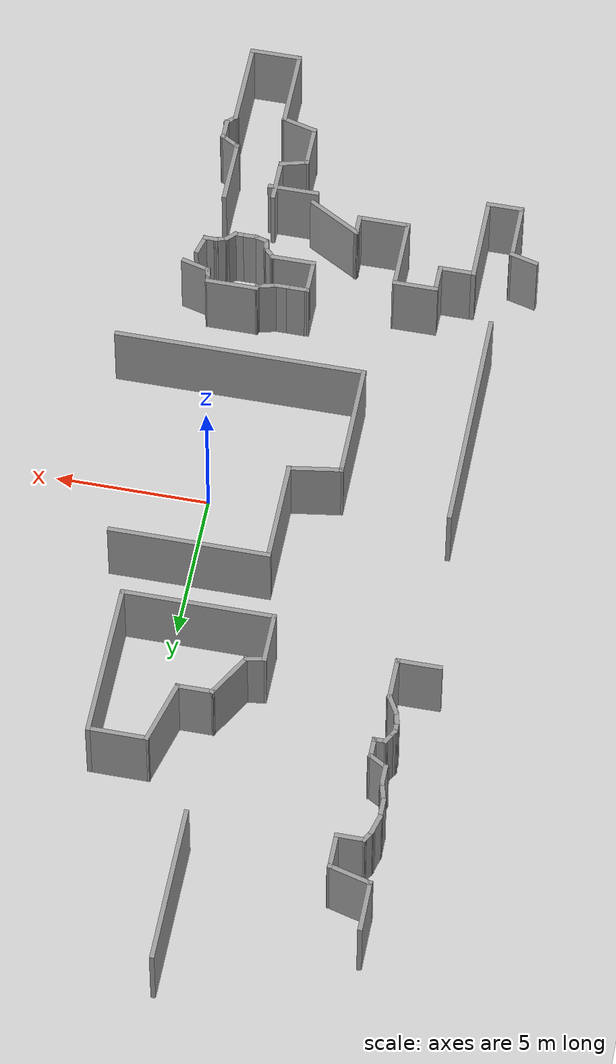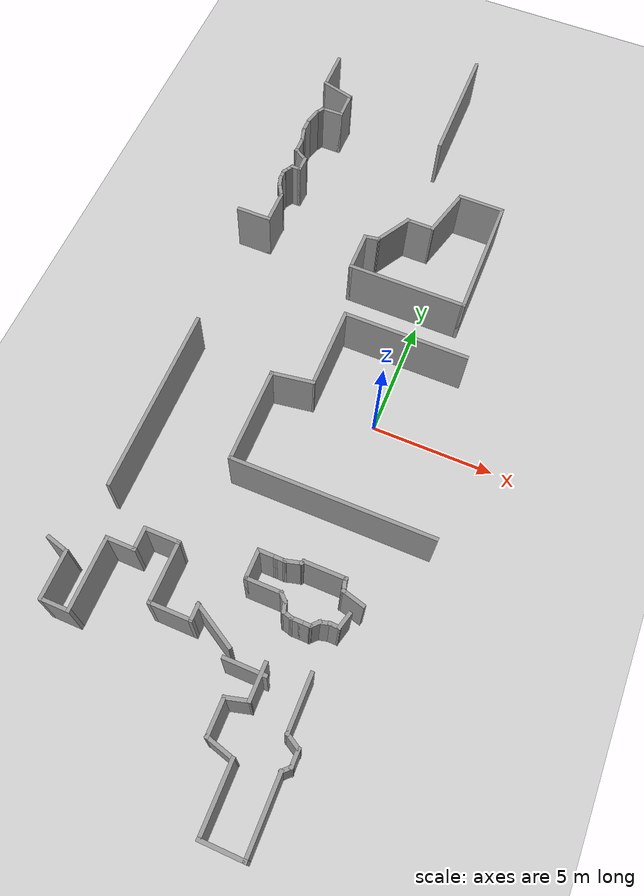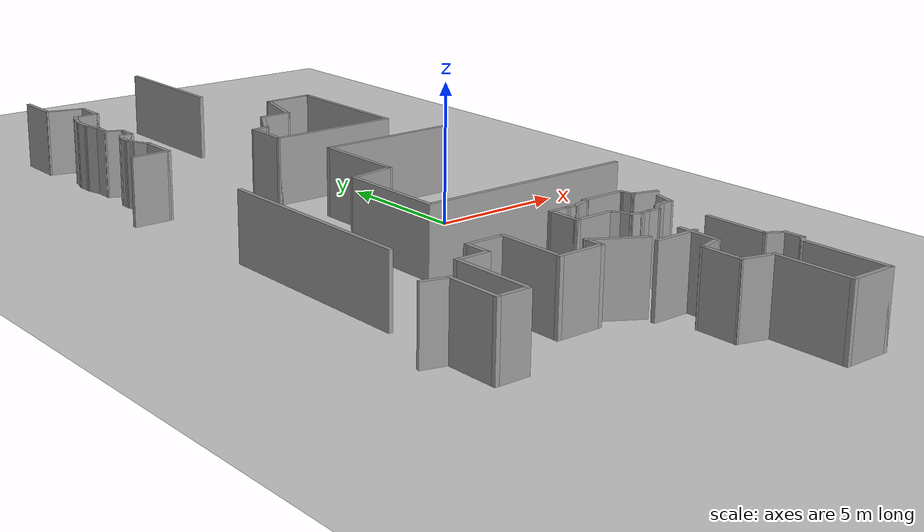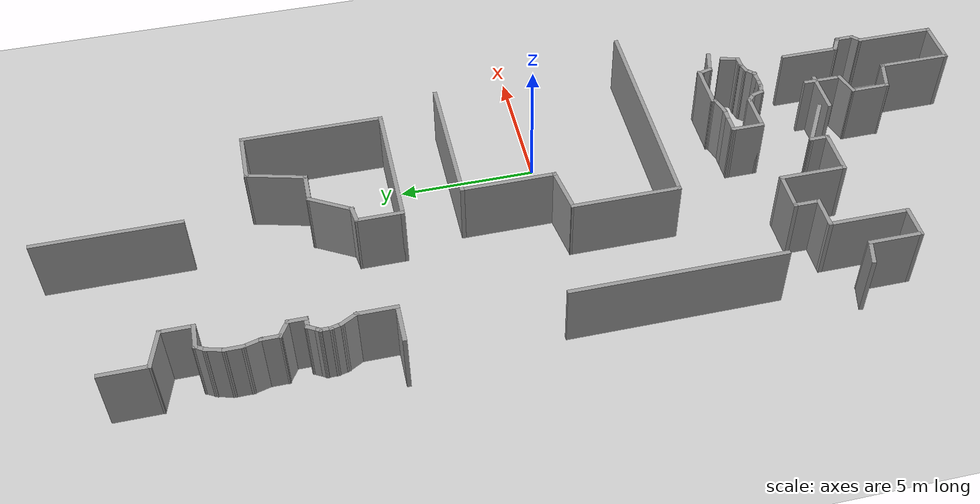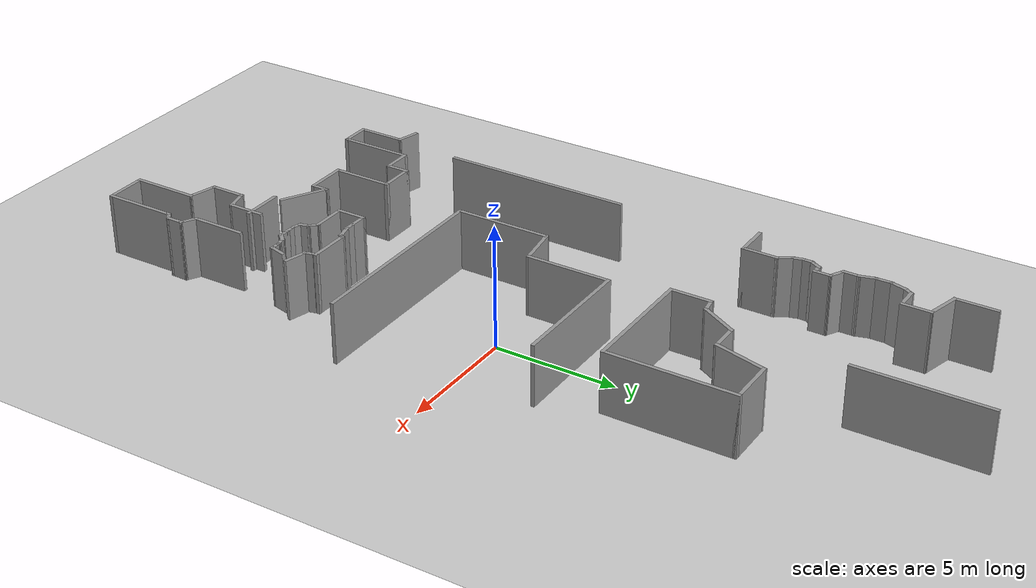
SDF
<sdf version="1.7">
 <world name="default">
  <model name="ground_plane">
   <static>1</static>
   <link name="link">
    <collision name="collision">
     <geometry><plane><normal>0 0 1</normal><size>100 100</size></plane></geometry>
     <surface>
      <contact><collide_bitmask>65535</collide_bitmask></contact>
      <friction><ode><mu>100</mu><mu2>50</mu2></ode></friction>
     </surface>
    </collision>
    <visual name="visual">
     <cast_shadows>0</cast_shadows>
     <geometry><plane><normal>0 0 1</normal><size>100 100</size></plane></geometry>
     <material>
      <script><uri>file://media/materials/scripts/gazebo.material</uri><name>Gazebo/Grey</name></script>
     </material>
    </visual>
   </link>
  </model>
  <model name="latest_world">
   <pose>-1.4911 -0.096187 0 0 -0 0</pose>
   <link name="Wall_1">
    <collision name="Wall_1_Collision">
     <geometry><box><size>5.25 0.15 2.5</size></box></geometry>
     <pose>0 0 1.25 0 -0 0</pose>
    </collision>
    <visual name="Wall_1_Visual">
     <pose>0 0 1.25 0 -0 0</pose>
     <geometry><box><size>5.25 0.15 2.5</size></box></geometry>
     <material>
      <script><uri>file://media/materials/scripts/gazebo.material</uri><name>Gazebo/Grey</name></script>
      <ambient>1 1 1 1</ambient>
     </material>
     <meta><layer>0</layer></meta>
    </visual>
    <pose>-0.444891 15.4657 0 0 -0 -1.5708</pose>
   </link>
   <link name="Wall_153">
    <collision name="Wall_153_Collision">
     <geometry><box><size>7.75 0.15 2.5</size></box></geometry>
     <pose>0 0 1.25 0 -0 0</pose>
    </collision>
    <visual name="Wall_153_Visual">
     <pose>0 0 1.25 0 -0 0</pose>
     <geometry><box><size>7.75 0.15 2.5</size></box></geometry>
     <material>
      <script><uri>file://media/materials/scripts/gazebo.material</uri><name>Gazebo/Grey</name></script>
      <ambient>1 1 1 1</ambient>
     </material>
     <meta><layer>0</layer></meta>
    </visual>
    <pose>-6.4377 -3.07626 0 0 -0 1.5708</pose>
   </link>
   <link name="Wall_257">
    <collision name="Wall_257_Collision">
     <geometry><box><size>1.5 0.15 2.5</size></box></geometry>
     <pose>0 0 1.25 0 -0 0</pose>
    </collision>
    <visual name="Wall_257_Visual">
     <pose>0 0 1.25 0 -0 0</pose>
     <geometry><box><size>1.5 0.15 2.5</size></box></geometry>
     <material>
      <script><uri>file://media/materials/scripts/gazebo.material</uri><name>Gazebo/Grey</name></script>
      <ambient>1 1 1 1</ambient>
     </material>
     <meta><layer>0</layer></meta>
    </visual>
    <pose>-6.46646 6.33002 0 0 -0 0</pose>
   </link>
   <link name="Wall_258">
    <collision name="Wall_258_Collision">
     <geometry><box><size>1.5 0.15 2.5</size></box></geometry>
     <pose>0 0 1.25 0 -0 0</pose>
    </collision>
    <visual name="Wall_258_Visual">
     <pose>0 0 1.25 0 -0 0</pose>
     <geometry><box><size>1.5 0.15 2.5</size></box></geometry>
     <material>
      <script><uri>file://media/materials/scripts/gazebo.material</uri><name>Gazebo/Grey</name></script>
      <ambient>1 1 1 1</ambient>
     </material>
     <meta><layer>0</layer></meta>
    </visual>
    <pose>-5.79146 7.00502 0 0 -0 1.5708</pose>
   </link>
   <link name="Wall_259">
    <collision name="Wall_259_Collision">
     <geometry><box><size>0.75 0.15 2.5</size></box></geometry>
     <pose>0 0 1.25 0 -0 0</pose>
    </collision>
    <visual name="Wall_259_Visual">
     <pose>0 0 1.25 0 -0 0</pose>
     <geometry><box><size>0.75 0.15 2.5</size></box></geometry>
     <material>
      <script><uri>file://media/materials/scripts/gazebo.material</uri><name>Gazebo/Grey</name></script>
      <ambient>1 1 1 1</ambient>
     </material>
     <meta><layer>0</layer></meta>
    </visual>
    <pose>-5.94146 7.93982 0 0 -0 2.0944</pose>
   </link>
   <link name="Wall_260">
    <collision name="Wall_260_Collision">
     <geometry><box><size>0.5 0.15 2.5</size></box></geometry>
     <pose>0 0 1.25 0 -0 0</pose>
    </collision>
    <visual name="Wall_260_Visual">
     <pose>0 0 1.25 0 -0 0</pose>
     <geometry><box><size>0.5 0.15 2.5</size></box></geometry>
     <material>
      <script><uri>file://media/materials/scripts/gazebo.material</uri><name>Gazebo/Grey</name></script>
      <ambient>1 1 1 1</ambient>
     </material>
     <meta><layer>0</layer></meta>
    </visual>
    <pose>-6.13675 8.36867 0 0 -0 1.8326</pose>
   </link>
   <link name="Wall_261">
    <collision name="Wall_261_Collision">
     <geometry><box><size>0.5 0.15 2.5</size></box></geometry>
     <pose>0 0 1.25 0 -0 0</pose>
    </collision>
    <visual name="Wall_261_Visual">
     <pose>0 0 1.25 0 -0 0</pose>
     <geometry><box><size>0.5 0.15 2.5</size></box></geometry>
     <material>
      <script><uri>file://media/materials/scripts/gazebo.material</uri><name>Gazebo/Grey</name></script>
      <ambient>1 1 1 1</ambient>
     </material>
     <meta><layer>0</layer></meta>
    </visual>
    <pose>-6.18205 8.71271 0 0 -0 1.5708</pose>
   </link>
   <link name="Wall_262">
    <collision name="Wall_262_Collision">
     <geometry><box><size>0.25 0.15 2.5</size></box></geometry>
     <pose>0 0 1.25 0 -0 0</pose>
    </collision>
    <visual name="Wall_262_Visual">
     <pose>0 0 1.25 0 -0 0</pose>
     <geometry><box><size>0.25 0.15 2.5</size></box></geometry>
     <material>
      <script><uri>file://media/materials/scripts/gazebo.material</uri><name>Gazebo/Grey</name></script>
      <ambient>1 1 1 1</ambient>
     </material>
     <meta><layer>0</layer></meta>
    </visual>
    <pose>-6.15705 8.93101 0 0 -0 1.0472</pose>
   </link>
   <link name="Wall_263">
    <collision name="Wall_263_Collision">
     <geometry><box><size>0.5 0.15 2.5</size></box></geometry>
     <pose>0 0 1.25 0 -0 0</pose>
    </collision>
    <visual name="Wall_263_Visual">
     <pose>0 0 1.25 0 -0 0</pose>
     <geometry><box><size>0.5 0.15 2.5</size></box></geometry>
     <material>
      <script><uri>file://media/materials/scripts/gazebo.material</uri><name>Gazebo/Grey</name></script>
      <ambient>1 1 1 1</ambient>
     </material>
     <meta><layer>0</layer></meta>
    </visual>
    <pose>-6.04455 9.12586 0 0 -0 1.0472</pose>
   </link>
   <link name="Wall_264">
    <collision name="Wall_264_Collision">
     <geometry><box><size>0.5 0.15 2.5</size></box></geometry>
     <pose>0 0 1.25 0 -0 0</pose>
    </collision>
    <visual name="Wall_264_Visual">
     <pose>0 0 1.25 0 -0 0</pose>
     <geometry><box><size>0.5 0.15 2.5</size></box></geometry>
     <material>
      <script><uri>file://media/materials/scripts/gazebo.material</uri><name>Gazebo/Grey</name></script>
      <ambient>1 1 1 1</ambient>
     </material>
     <meta><layer>0</layer></meta>
    </visual>
    <pose>-5.78205 9.27742 0 0 -0 0</pose>
   </link>
   <link name="Wall_265">
    <collision name="Wall_265_Collision">
     <geometry><box><size>0.75 0.15 2.5</size></box></geometry>
     <pose>0 0 1.25 0 -0 0</pose>
    </collision>
    <visual name="Wall_265_Visual">
     <pose>0 0 1.25 0 -0 0</pose>
     <geometry><box><size>0.75 0.15 2.5</size></box></geometry>
     <material>
      <script><uri>file://media/materials/scripts/gazebo.material</uri><name>Gazebo/Grey</name></script>
      <ambient>1 1 1 1</ambient>
     </material>
     <meta><layer>0</layer></meta>
    </visual>
    <pose>-5.60705 9.57742 0 0 -0 1.5708</pose>
   </link>
   <link name="Wall_266">
    <collision name="Wall_266_Collision">
     <geometry><box><size>0.75 0.15 2.5</size></box></geometry>
     <pose>0 0 1.25 0 -0 0</pose>
    </collision>
    <visual name="Wall_266_Visual">
     <pose>0 0 1.25 0 -0 0</pose>
     <geometry><box><size>0.75 0.15 2.5</size></box></geometry>
     <material>
      <script><uri>file://media/materials/scripts/gazebo.material</uri><name>Gazebo/Grey</name></script>
      <ambient>1 1 1 1</ambient>
     </material>
     <meta><layer>0</layer></meta>
    </visual>
    <pose>-5.86685 10.0274 0 0 -0 2.61799</pose>
   </link>
   <link name="Wall_267">
    <collision name="Wall_267_Collision">
     <geometry><box><size>0.75 0.15 2.5</size></box></geometry>
     <pose>0 0 1.25 0 -0 0</pose>
    </collision>
    <visual name="Wall_267_Visual">
     <pose>0 0 1.25 0 -0 0</pose>
     <geometry><box><size>0.75 0.15 2.5</size></box></geometry>
     <material>
      <script><uri>file://media/materials/scripts/gazebo.material</uri><name>Gazebo/Grey</name></script>
      <ambient>1 1 1 1</ambient>
     </material>
     <meta><layer>0</layer></meta>
    </visual>
    <pose>-6.12666 10.4774 0 0 -0 1.5708</pose>
   </link>
   <link name="Wall_268">
    <collision name="Wall_268_Collision">
     <geometry><box><size>0.75 0.15 2.5</size></box></geometry>
     <pose>0 0 1.25 0 -0 0</pose>
    </collision>
    <visual name="Wall_268_Visual">
     <pose>0 0 1.25 0 -0 0</pose>
     <geometry><box><size>0.75 0.15 2.5</size></box></geometry>
     <material>
      <script><uri>file://media/materials/scripts/gazebo.material</uri><name>Gazebo/Grey</name></script>
      <ambient>1 1 1 1</ambient>
     </material>
     <meta><layer>0</layer></meta>
    </visual>
    <pose>-6.20431 11.0672 0 0 -0 1.8326</pose>
   </link>
   <link name="Wall_269">
    <collision name="Wall_269_Collision">
     <geometry><box><size>0.75 0.15 2.5</size></box></geometry>
     <pose>0 0 1.25 0 -0 0</pose>
    </collision>
    <visual name="Wall_269_Visual">
     <pose>0 0 1.25 0 -0 0</pose>
     <geometry><box><size>0.75 0.15 2.5</size></box></geometry>
     <material>
      <script><uri>file://media/materials/scripts/gazebo.material</uri><name>Gazebo/Grey</name></script>
      <ambient>1 1 1 1</ambient>
     </material>
     <meta><layer>0</layer></meta>
    </visual>
    <pose>-6.28195 11.657 0 0 -0 1.5708</pose>
   </link>
   <link name="Wall_270">
    <collision name="Wall_270_Collision">
     <geometry><box><size>0.75 0.15 2.5</size></box></geometry>
     <pose>0 0 1.25 0 -0 0</pose>
    </collision>
    <visual name="Wall_270_Visual">
     <pose>0 0 1.25 0 -0 0</pose>
     <geometry><box><size>0.75 0.15 2.5</size></box></geometry>
     <material>
      <script><uri>file://media/materials/scripts/gazebo.material</uri><name>Gazebo/Grey</name></script>
      <ambient>1 1 1 1</ambient>
     </material>
     <meta><layer>0</layer></meta>
    </visual>
    <pose>-6.20431 12.2468 0 0 -0 1.309</pose>
   </link>
   <link name="Wall_271">
    <collision name="Wall_271_Collision">
     <geometry><box><size>0.5 0.15 2.5</size></box></geometry>
     <pose>0 0 1.25 0 -0 0</pose>
    </collision>
    <visual name="Wall_271_Visual">
     <pose>0 0 1.25 0 -0 0</pose>
     <geometry><box><size>0.5 0.15 2.5</size></box></geometry>
     <material>
      <script><uri>file://media/materials/scripts/gazebo.material</uri><name>Gazebo/Grey</name></script>
      <ambient>1 1 1 1</ambient>
     </material>
     <meta><layer>0</layer></meta>
    </visual>
    <pose>-6.03916 12.6881 0 0 -0 1.0472</pose>
   </link>
   <link name="Wall_272">
    <collision name="Wall_272_Collision">
     <geometry><box><size>1 0.15 2.5</size></box></geometry>
     <pose>0 0 1.25 0 -0 0</pose>
    </collision>
    <visual name="Wall_272_Visual">
     <pose>0 0 1.25 0 -0 0</pose>
     <geometry><box><size>1 0.15 2.5</size></box></geometry>
     <material>
      <script><uri>file://media/materials/scripts/gazebo.material</uri><name>Gazebo/Grey</name></script>
      <ambient>1 1 1 1</ambient>
     </material>
     <meta><layer>0</layer></meta>
    </visual>
    <pose>-5.52666 12.8396 0 0 -0 0</pose>
   </link>
   <link name="Wall_273">
    <collision name="Wall_273_Collision">
     <geometry><box><size>1.25 0.15 2.5</size></box></geometry>
     <pose>0 0 1.25 0 -0 0</pose>
    </collision>
    <visual name="Wall_273_Visual">
     <pose>0 0 1.25 0 -0 0</pose>
     <geometry><box><size>1.25 0.15 2.5</size></box></geometry>
     <material>
      <script><uri>file://media/materials/scripts/gazebo.material</uri><name>Gazebo/Grey</name></script>
      <ambient>1 1 1 1</ambient>
     </material>
     <meta><layer>0</layer></meta>
    </visual>
    <pose>-5.10166 13.3896 0 0 -0 1.5708</pose>
   </link>
   <link name="Wall_274">
    <collision name="Wall_274_Collision">
     <geometry><box><size>1.5 0.15 2.5</size></box></geometry>
     <pose>0 0 1.25 0 -0 0</pose>
    </collision>
    <visual name="Wall_274_Visual">
     <pose>0 0 1.25 0 -0 0</pose>
     <geometry><box><size>1.5 0.15 2.5</size></box></geometry>
     <material>
      <script><uri>file://media/materials/scripts/gazebo.material</uri><name>Gazebo/Grey</name></script>
      <ambient>1 1 1 1</ambient>
     </material>
     <meta><layer>0</layer></meta>
    </visual>
    <pose>-5.75366 14.1143 0 0 -0 2.87979</pose>
   </link>
   <link name="Wall_275">
    <collision name="Wall_275_Collision">
     <geometry><box><size>1.75 0.15 2.5</size></box></geometry>
     <pose>0 0 1.25 0 -0 0</pose>
    </collision>
    <visual name="Wall_275_Visual">
     <pose>0 0 1.25 0 -0 0</pose>
     <geometry><box><size>1.75 0.15 2.5</size></box></geometry>
     <material>
      <script><uri>file://media/materials/scripts/gazebo.material</uri><name>Gazebo/Grey</name></script>
      <ambient>1 1 1 1</ambient>
     </material>
     <meta><layer>0</layer></meta>
    </visual>
    <pose>-6.40566 15.089 0 0 -0 1.5708</pose>
   </link>
   <link name="Wall_279">
    <collision name="Wall_279_Collision">
     <geometry><box><size>1.25 0.15 2.5</size></box></geometry>
     <pose>0 0 1.25 0 -0 0</pose>
    </collision>
    <visual name="Wall_279_Visual">
     <pose>0 0 1.25 0 -0 0</pose>
     <geometry><box><size>1.25 0.15 2.5</size></box></geometry>
     <material>
      <script><uri>file://media/materials/scripts/gazebo.material</uri><name>Gazebo/Grey</name></script>
      <ambient>1 1 1 1</ambient>
     </material>
     <meta><layer>0</layer></meta>
    </visual>
    <pose>-0.355137 -7.59426 0 0 -0 -1.5708</pose>
   </link>
   <link name="Wall_280">
    <collision name="Wall_280_Collision">
     <geometry><box><size>1.5 0.15 2.5</size></box></geometry>
     <pose>0 0 1.25 0 -0 0</pose>
    </collision>
    <visual name="Wall_280_Visual">
     <pose>0 0 1.25 0 -0 0</pose>
     <geometry><box><size>1.5 0.15 2.5</size></box></geometry>
     <material>
      <script><uri>file://media/materials/scripts/gazebo.material</uri><name>Gazebo/Grey</name></script>
      <ambient>1 1 1 1</ambient>
     </material>
     <meta><layer>0</layer></meta>
    </visual>
    <pose>0.319863 -8.14426 0 0 -0 0</pose>
   </link>
   <link name="Wall_281">
    <collision name="Wall_281_Collision">
     <geometry><box><size>0.5 0.15 2.5</size></box></geometry>
     <pose>0 0 1.25 0 -0 0</pose>
    </collision>
    <visual name="Wall_281_Visual">
     <pose>0 0 1.25 0 -0 0</pose>
     <geometry><box><size>0.5 0.15 2.5</size></box></geometry>
     <material>
      <script><uri>file://media/materials/scripts/gazebo.material</uri><name>Gazebo/Grey</name></script>
      <ambient>1 1 1 1</ambient>
     </material>
     <meta><layer>0</layer></meta>
    </visual>
    <pose>1.11861 -8.26801 0 0 -0 -0.785398</pose>
   </link>
   <link name="Wall_282">
    <collision name="Wall_282_Collision">
     <geometry><box><size>0.5 0.15 2.5</size></box></geometry>
     <pose>0 0 1.25 0 -0 0</pose>
    </collision>
    <visual name="Wall_282_Visual">
     <pose>0 0 1.25 0 -0 0</pose>
     <geometry><box><size>0.5 0.15 2.5</size></box></geometry>
     <material>
      <script><uri>file://media/materials/scripts/gazebo.material</uri><name>Gazebo/Grey</name></script>
      <ambient>1 1 1 1</ambient>
     </material>
     <meta><layer>0</layer></meta>
    </visual>
    <pose>1.28764 -8.56079 0 0 -0 -1.309</pose>
   </link>
   <link name="Wall_283">
    <collision name="Wall_283_Collision">
     <geometry><box><size>0.5 0.15 2.5</size></box></geometry>
     <pose>0 0 1.25 0 -0 0</pose>
    </collision>
    <visual name="Wall_283_Visual">
     <pose>0 0 1.25 0 -0 0</pose>
     <geometry><box><size>0.5 0.15 2.5</size></box></geometry>
     <material>
      <script><uri>file://media/materials/scripts/gazebo.material</uri><name>Gazebo/Grey</name></script>
      <ambient>1 1 1 1</ambient>
     </material>
     <meta><layer>0</layer></meta>
    </visual>
    <pose>1.50197 -8.77512 0 0 -0 -0.261799</pose>
   </link>
   <link name="Wall_284">
    <collision name="Wall_284_Collision">
     <geometry><box><size>0.5 0.15 2.5</size></box></geometry>
     <pose>0 0 1.25 0 -0 0</pose>
    </collision>
    <visual name="Wall_284_Visual">
     <pose>0 0 1.25 0 -0 0</pose>
     <geometry><box><size>0.5 0.15 2.5</size></box></geometry>
     <material>
      <script><uri>file://media/materials/scripts/gazebo.material</uri><name>Gazebo/Grey</name></script>
      <ambient>1 1 1 1</ambient>
     </material>
     <meta><layer>0</layer></meta>
    </visual>
    <pose>1.84601 -8.82041 0 0 -0 0</pose>
   </link>
   <link name="Wall_285">
    <collision name="Wall_285_Collision">
     <geometry><box><size>0.5 0.15 2.5</size></box></geometry>
     <pose>0 0 1.25 0 -0 0</pose>
    </collision>
    <visual name="Wall_285_Visual">
     <pose>0 0 1.25 0 -0 0</pose>
     <geometry><box><size>0.5 0.15 2.5</size></box></geometry>
     <material>
      <script><uri>file://media/materials/scripts/gazebo.material</uri><name>Gazebo/Grey</name></script>
      <ambient>1 1 1 1</ambient>
     </material>
     <meta><layer>0</layer></meta>
    </visual>
    <pose>2.19601 -8.82041 0 0 -0 0</pose>
   </link>
   <link name="Wall_286">
    <collision name="Wall_286_Collision">
     <geometry><box><size>0.5 0.15 2.5</size></box></geometry>
     <pose>0 0 1.25 0 -0 0</pose>
    </collision>
    <visual name="Wall_286_Visual">
     <pose>0 0 1.25 0 -0 0</pose>
     <geometry><box><size>0.5 0.15 2.5</size></box></geometry>
     <material>
      <script><uri>file://media/materials/scripts/gazebo.material</uri><name>Gazebo/Grey</name></script>
      <ambient>1 1 1 1</ambient>
     </material>
     <meta><layer>0</layer></meta>
    </visual>
    <pose>2.49476 -8.69667 0 0 -0 0.785398</pose>
   </link>
   <link name="Wall_287">
    <collision name="Wall_287_Collision">
     <geometry><box><size>0.5 0.15 2.5</size></box></geometry>
     <pose>0 0 1.25 0 -0 0</pose>
    </collision>
    <visual name="Wall_287_Visual">
     <pose>0 0 1.25 0 -0 0</pose>
     <geometry><box><size>0.5 0.15 2.5</size></box></geometry>
     <material>
      <script><uri>file://media/materials/scripts/gazebo.material</uri><name>Gazebo/Grey</name></script>
      <ambient>1 1 1 1</ambient>
     </material>
     <meta><layer>0</layer></meta>
    </visual>
    <pose>2.78754 -8.52763 0 0 -0 0.261799</pose>
   </link>
   <link name="Wall_288">
    <collision name="Wall_288_Collision">
     <geometry><box><size>0.5 0.15 2.5</size></box></geometry>
     <pose>0 0 1.25 0 -0 0</pose>
    </collision>
    <visual name="Wall_288_Visual">
     <pose>0 0 1.25 0 -0 0</pose>
     <geometry><box><size>0.5 0.15 2.5</size></box></geometry>
     <material>
      <script><uri>file://media/materials/scripts/gazebo.material</uri><name>Gazebo/Grey</name></script>
      <ambient>1 1 1 1</ambient>
     </material>
     <meta><layer>0</layer></meta>
    </visual>
    <pose>3.13157 -8.48234 0 0 -0 0</pose>
   </link>
   <link name="Wall_289">
    <collision name="Wall_289_Collision">
     <geometry><box><size>0.75 0.15 2.5</size></box></geometry>
     <pose>0 0 1.25 0 -0 0</pose>
    </collision>
    <visual name="Wall_289_Visual">
     <pose>0 0 1.25 0 -0 0</pose>
     <geometry><box><size>0.75 0.15 2.5</size></box></geometry>
     <material>
      <script><uri>file://media/materials/scripts/gazebo.material</uri><name>Gazebo/Grey</name></script>
      <ambient>1 1 1 1</ambient>
     </material>
     <meta><layer>0</layer></meta>
    </visual>
    <pose>3.38422 -8.19256 0 0 -0 1.309</pose>
   </link>
   <link name="Wall_292">
    <collision name="Wall_292_Collision">
     <geometry><box><size>1 0.15 2.5</size></box></geometry>
     <pose>0 0 1.25 0 -0 0</pose>
    </collision>
    <visual name="Wall_292_Visual">
     <pose>0 0 1.25 0 -0 0</pose>
     <geometry><box><size>1 0.15 2.5</size></box></geometry>
     <material>
      <script><uri>file://media/materials/scripts/gazebo.material</uri><name>Gazebo/Grey</name></script>
      <ambient>1 1 1 1</ambient>
     </material>
     <meta><layer>0</layer></meta>
    </visual>
    <pose>3.38942 -7.3522 0 0 -0 2.87979</pose>
   </link>
   <link name="Wall_293">
    <collision name="Wall_293_Collision">
     <geometry><box><size>0.5 0.15 2.5</size></box></geometry>
     <pose>0 0 1.25 0 -0 0</pose>
    </collision>
    <visual name="Wall_293_Visual">
     <pose>0 0 1.25 0 -0 0</pose>
     <geometry><box><size>0.5 0.15 2.5</size></box></geometry>
     <material>
      <script><uri>file://media/materials/scripts/gazebo.material</uri><name>Gazebo/Grey</name></script>
      <ambient>1 1 1 1</ambient>
     </material>
     <meta><layer>0</layer></meta>
    </visual>
    <pose>2.93361 -7.07316 0 0 -0 1.8326</pose>
   </link>
   <link name="Wall_294">
    <collision name="Wall_294_Collision">
     <geometry><box><size>0.25 0.15 2.5</size></box></geometry>
     <pose>0 0 1.25 0 -0 0</pose>
    </collision>
    <visual name="Wall_294_Visual">
     <pose>0 0 1.25 0 -0 0</pose>
     <geometry><box><size>0.25 0.15 2.5</size></box></geometry>
     <material>
      <script><uri>file://media/materials/scripts/gazebo.material</uri><name>Gazebo/Grey</name></script>
      <ambient>1 1 1 1</ambient>
     </material>
     <meta><layer>0</layer></meta>
    </visual>
    <pose>2.88831 -6.85413 0 0 -0 1.5708</pose>
   </link>
   <link name="Wall_295">
    <collision name="Wall_295_Collision">
     <geometry><box><size>1.75 0.15 2.5</size></box></geometry>
     <pose>0 0 1.25 0 -0 0</pose>
    </collision>
    <visual name="Wall_295_Visual">
     <pose>0 0 1.25 0 -0 0</pose>
     <geometry><box><size>1.75 0.15 2.5</size></box></geometry>
     <material>
      <script><uri>file://media/materials/scripts/gazebo.material</uri><name>Gazebo/Grey</name></script>
      <ambient>1 1 1 1</ambient>
     </material>
     <meta><layer>0</layer></meta>
    </visual>
    <pose>2.08831 -6.80413 0 0 -0 3.14159</pose>
   </link>
   <link name="Wall_296">
    <collision name="Wall_296_Collision">
     <geometry><box><size>0.25 0.15 2.5</size></box></geometry>
     <pose>0 0 1.25 0 -0 0</pose>
    </collision>
    <visual name="Wall_296_Visual">
     <pose>0 0 1.25 0 -0 0</pose>
     <geometry><box><size>0.25 0.15 2.5</size></box></geometry>
     <material>
      <script><uri>file://media/materials/scripts/gazebo.material</uri><name>Gazebo/Grey</name></script>
      <ambient>1 1 1 1</ambient>
     </material>
     <meta><layer>0</layer></meta>
    </visual>
    <pose>1.26331 -6.84743 0 0 -0 -2.0944</pose>
   </link>
   <link name="Wall_297">
    <collision name="Wall_297_Collision">
     <geometry><box><size>0.75 0.15 2.5</size></box></geometry>
     <pose>0 0 1.25 0 -0 0</pose>
    </collision>
    <visual name="Wall_297_Visual">
     <pose>0 0 1.25 0 -0 0</pose>
     <geometry><box><size>0.75 0.15 2.5</size></box></geometry>
     <material>
      <script><uri>file://media/materials/scripts/gazebo.material</uri><name>Gazebo/Grey</name></script>
      <ambient>1 1 1 1</ambient>
     </material>
     <meta><layer>0</layer></meta>
    </visual>
    <pose>0.948537 -6.96837 0 0 -0 -2.87979</pose>
   </link>
   <link name="Wall_298">
    <collision name="Wall_298_Collision">
     <geometry><box><size>0.5 0.15 2.5</size></box></geometry>
     <pose>0 0 1.25 0 -0 0</pose>
    </collision>
    <visual name="Wall_298_Visual">
     <pose>0 0 1.25 0 -0 0</pose>
     <geometry><box><size>0.5 0.15 2.5</size></box></geometry>
     <material>
      <script><uri>file://media/materials/scripts/gazebo.material</uri><name>Gazebo/Grey</name></script>
      <ambient>1 1 1 1</ambient>
     </material>
     <meta><layer>0</layer></meta>
    </visual>
    <pose>0.483759 -7.04602 0 0 -0 3.14159</pose>
   </link>
   <link name="Wall_299">
    <collision name="Wall_299_Collision">
     <geometry><box><size>0.813898 0.15 2.5</size></box></geometry>
     <pose>0 0 1.25 0 -0 0</pose>
    </collision>
    <visual name="Wall_299_Visual">
     <pose>0 0 1.25 0 -0 0</pose>
     <geometry><box><size>0.813898 0.15 2.5</size></box></geometry>
     <material>
      <script><uri>file://media/materials/scripts/gazebo.material</uri><name>Gazebo/Grey</name></script>
      <ambient>1 1 1 1</ambient>
     </material>
     <meta><layer>0</layer></meta>
    </visual>
    <pose>-0.023189 -7.04514 0 0 -0 3.13895</pose>
   </link>
   <link name="Wall_301">
    <collision name="Wall_301_Collision">
     <geometry><box><size>4 0.15 2.5</size></box></geometry>
     <pose>0 0 1.25 0 -0 0</pose>
    </collision>
    <visual name="Wall_301_Visual">
     <pose>0 0 1.25 0 -0 0</pose>
     <geometry><box><size>4 0.15 2.5</size></box></geometry>
     <material>
      <script><uri>file://media/materials/scripts/gazebo.material</uri><name>Gazebo/Grey</name></script>
      <ambient>1 1 1 1</ambient>
     </material>
     <meta><layer>0</layer></meta>
    </visual>
    <pose>-2.75483 -2.27212 0 0 -0 -1.5708</pose>
   </link>
   <link name="Wall_302">
    <collision name="Wall_302_Collision">
     <geometry><box><size>8.25 0.15 2.5</size></box></geometry>
     <pose>0 0 1.25 0 -0 0</pose>
    </collision>
    <visual name="Wall_302_Visual">
     <pose>0 0 1.25 0 -0 0</pose>
     <geometry><box><size>8.25 0.15 2.5</size></box></geometry>
     <material>
      <script><uri>file://media/materials/scripts/gazebo.material</uri><name>Gazebo/Grey</name></script>
      <ambient>1 1 1 1</ambient>
     </material>
     <meta><layer>0</layer></meta>
    </visual>
    <pose>1.29517 -4.19712 0 0 -0 0</pose>
   </link>
   <link name="Wall_306">
    <collision name="Wall_306_Collision">
     <geometry><box><size>5.25 0.15 2.5</size></box></geometry>
     <pose>0 0 1.25 0 -0 0</pose>
    </collision>
    <visual name="Wall_306_Visual">
     <pose>0 0 1.25 0 -0 0</pose>
     <geometry><box><size>5.25 0.15 2.5</size></box></geometry>
     <material>
      <script><uri>file://media/materials/scripts/gazebo.material</uri><name>Gazebo/Grey</name></script>
      <ambient>1 1 1 1</ambient>
     </material>
     <meta><layer>0</layer></meta>
    </visual>
    <pose>1.44517 3.25288 0 0 -0 3.14159</pose>
   </link>
   <link name="Wall_307">
    <collision name="Wall_307_Collision">
     <geometry><box><size>3.5 0.15 2.5</size></box></geometry>
     <pose>0 0 1.25 0 -0 0</pose>
    </collision>
    <visual name="Wall_307_Visual">
     <pose>0 0 1.25 0 -0 0</pose>
     <geometry><box><size>3.5 0.15 2.5</size></box></geometry>
     <material>
      <script><uri>file://media/materials/scripts/gazebo.material</uri><name>Gazebo/Grey</name></script>
      <ambient>1 1 1 1</ambient>
     </material>
     <meta><layer>0</layer></meta>
    </visual>
    <pose>-1.10483 1.57788 0 0 -0 -1.5708</pose>
   </link>
   <link name="Wall_308">
    <collision name="Wall_308_Collision">
     <geometry><box><size>1.81883 0.15 2.5</size></box></geometry>
     <pose>0 0 1.25 0 -0 0</pose>
    </collision>
    <visual name="Wall_308_Visual">
     <pose>0 0 1.25 0 -0 0</pose>
     <geometry><box><size>1.81883 0.15 2.5</size></box></geometry>
     <material>
      <script><uri>file://media/materials/scripts/gazebo.material</uri><name>Gazebo/Grey</name></script>
      <ambient>1 1 1 1</ambient>
     </material>
     <meta><layer>0</layer></meta>
    </visual>
    <pose>-1.92983 -0.222116 0 0 -0 -2.99122</pose>
   </link>
   <link name="Wall_310">
    <collision name="Wall_310_Collision">
     <geometry><box><size>1.75 0.15 2.5</size></box></geometry>
     <pose>0 0 1.25 0 -0 0</pose>
    </collision>
    <visual name="Wall_310_Visual">
     <pose>0 0 1.25 0 -0 0</pose>
     <geometry><box><size>1.75 0.15 2.5</size></box></geometry>
     <material>
      <script><uri>file://media/materials/scripts/gazebo.material</uri><name>Gazebo/Grey</name></script>
      <ambient>1 1 1 1</ambient>
     </material>
     <meta><layer>0</layer></meta>
    </visual>
    <pose>-1.72257 6.26931 0 0 -0 -1.5708</pose>
   </link>
   <link name="Wall_311">
    <collision name="Wall_311_Collision">
     <geometry><box><size>5 0.15 2.5</size></box></geometry>
     <pose>0 0 1.25 0 -0 0</pose>
    </collision>
    <visual name="Wall_311_Visual">
     <pose>0 0 1.25 0 -0 0</pose>
     <geometry><box><size>5 0.15 2.5</size></box></geometry>
     <material>
      <script><uri>file://media/materials/scripts/gazebo.material</uri><name>Gazebo/Grey</name></script>
      <ambient>1 1 1 1</ambient>
     </material>
     <meta><layer>0</layer></meta>
    </visual>
    <pose>0.702425 5.46931 0 0 -0 0</pose>
   </link>
   <link name="Wall_312">
    <collision name="Wall_312_Collision">
     <geometry><box><size>5.25 0.15 2.5</size></box></geometry>
     <pose>0 0 1.25 0 -0 0</pose>
    </collision>
    <visual name="Wall_312_Visual">
     <pose>0 0 1.25 0 -0 0</pose>
     <geometry><box><size>5.25 0.15 2.5</size></box></geometry>
     <material>
      <script><uri>file://media/materials/scripts/gazebo.material</uri><name>Gazebo/Grey</name></script>
      <ambient>1 1 1 1</ambient>
     </material>
     <meta><layer>0</layer></meta>
    </visual>
    <pose>3.12743 8.01931 0 0 -0 1.5708</pose>
   </link>
   <link name="Wall_313">
    <collision name="Wall_313_Collision">
     <geometry><box><size>2 0.15 2.5</size></box></geometry>
     <pose>0 0 1.25 0 -0 0</pose>
    </collision>
    <visual name="Wall_313_Visual">
     <pose>0 0 1.25 0 -0 0</pose>
     <geometry><box><size>2 0.15 2.5</size></box></geometry>
     <material>
      <script><uri>file://media/materials/scripts/gazebo.material</uri><name>Gazebo/Grey</name></script>
      <ambient>1 1 1 1</ambient>
     </material>
     <meta><layer>0</layer></meta>
    </visual>
    <pose>2.20242 10.5693 0 0 -0 3.14159</pose>
   </link>
   <link name="Wall_314">
    <collision name="Wall_314_Collision">
     <geometry><box><size>2.25 0.15 2.5</size></box></geometry>
     <pose>0 0 1.25 0 -0 0</pose>
    </collision>
    <visual name="Wall_314_Visual">
     <pose>0 0 1.25 0 -0 0</pose>
     <geometry><box><size>2.25 0.15 2.5</size></box></geometry>
     <material>
      <script><uri>file://media/materials/scripts/gazebo.material</uri><name>Gazebo/Grey</name></script>
      <ambient>1 1 1 1</ambient>
     </material>
     <meta><layer>0</layer></meta>
    </visual>
    <pose>1.00567 9.55509 0 0 -0 -1.8326</pose>
   </link>
   <link name="Wall_315">
    <collision name="Wall_315_Collision">
     <geometry><box><size>1.25 0.15 2.5</size></box></geometry>
     <pose>0 0 1.25 0 -0 0</pose>
    </collision>
    <visual name="Wall_315_Visual">
     <pose>0 0 1.25 0 -0 0</pose>
     <geometry><box><size>1.25 0.15 2.5</size></box></geometry>
     <material>
      <script><uri>file://media/materials/scripts/gazebo.material</uri><name>Gazebo/Grey</name></script>
      <ambient>1 1 1 1</ambient>
     </material>
     <meta><layer>0</layer></meta>
    </visual>
    <pose>0.183905 8.54087 0 0 -0 3.14159</pose>
   </link>
   <link name="Wall_316">
    <collision name="Wall_316_Collision">
     <geometry><box><size>1.75 0.15 2.5</size></box></geometry>
     <pose>0 0 1.25 0 -0 0</pose>
    </collision>
    <visual name="Wall_316_Visual">
     <pose>0 0 1.25 0 -0 0</pose>
     <geometry><box><size>1.75 0.15 2.5</size></box></geometry>
     <material>
      <script><uri>file://media/materials/scripts/gazebo.material</uri><name>Gazebo/Grey</name></script>
      <ambient>1 1 1 1</ambient>
     </material>
     <meta><layer>0</layer></meta>
    </visual>
    <pose>-0.766095 7.84805 0 0 -0 -2.0944</pose>
   </link>
   <link name="Wall_317">
    <collision name="Wall_317_Collision">
     <geometry><box><size>0.713073 0.15 2.5</size></box></geometry>
     <pose>0 0 1.25 0 -0 0</pose>
    </collision>
    <visual name="Wall_317_Visual">
     <pose>0 0 1.25 0 -0 0</pose>
     <geometry><box><size>0.713073 0.15 2.5</size></box></geometry>
     <material>
      <script><uri>file://media/materials/scripts/gazebo.material</uri><name>Gazebo/Grey</name></script>
      <ambient>1 1 1 1</ambient>
     </material>
     <meta><layer>0</layer></meta>
    </visual>
    <pose>-1.44433 7.11227 0 0 -0 -2.98841</pose>
   </link>
   <link name="Wall_68">
    <collision name="Wall_68_Collision">
     <geometry><box><size>2.25 0.15 2.5</size></box></geometry>
     <pose>0 0 1.25 0 -0 0</pose>
    </collision>
    <visual name="Wall_68_Visual">
     <pose>0 0 1.25 0 -0 0</pose>
     <geometry><box><size>2.25 0.15 2.5</size></box></geometry>
     <material>
      <script><uri>file://media/materials/scripts/gazebo.material</uri><name>Gazebo/Grey</name></script>
      <ambient>1 1 1 1</ambient>
     </material>
     <meta><layer>0</layer></meta>
    </visual>
    <pose>3.02719 -11.3211 0 0 -0 -1.5708</pose>
   </link>
   <link name="Wall_69">
    <collision name="Wall_69_Collision">
     <geometry><box><size>0.75 0.15 2.5</size></box></geometry>
     <pose>0 0 1.25 0 -0 0</pose>
    </collision>
    <visual name="Wall_69_Visual">
     <pose>0 0 1.25 0 -0 0</pose>
     <geometry><box><size>0.75 0.15 2.5</size></box></geometry>
     <material>
      <script><uri>file://media/materials/scripts/gazebo.material</uri><name>Gazebo/Grey</name></script>
      <ambient>1 1 1 1</ambient>
     </material>
     <meta><layer>0</layer></meta>
    </visual>
    <pose>3.287 -12.5211 0 0 -0 -0.523599</pose>
   </link>
   <link name="Wall_70">
    <collision name="Wall_70_Collision">
     <geometry><box><size>0.75 0.15 2.5</size></box></geometry>
     <pose>0 0 1.25 0 -0 0</pose>
    </collision>
    <visual name="Wall_70_Visual">
     <pose>0 0 1.25 0 -0 0</pose>
     <geometry><box><size>0.75 0.15 2.5</size></box></geometry>
     <material>
      <script><uri>file://media/materials/scripts/gazebo.material</uri><name>Gazebo/Grey</name></script>
      <ambient>1 1 1 1</ambient>
     </material>
     <meta><layer>0</layer></meta>
    </visual>
    <pose>3.54681 -12.9711 0 0 -0 -1.5708</pose>
   </link>
   <link name="Wall_71">
    <collision name="Wall_71_Collision">
     <geometry><box><size>0.5 0.15 2.5</size></box></geometry>
     <pose>0 0 1.25 0 -0 0</pose>
    </collision>
    <visual name="Wall_71_Visual">
     <pose>0 0 1.25 0 -0 0</pose>
     <geometry><box><size>0.5 0.15 2.5</size></box></geometry>
     <material>
      <script><uri>file://media/materials/scripts/gazebo.material</uri><name>Gazebo/Grey</name></script>
      <ambient>1 1 1 1</ambient>
     </material>
     <meta><layer>0</layer></meta>
    </visual>
    <pose>3.42306 -13.3949 0 0 -0 -2.35619</pose>
   </link>
   <link name="Wall_72">
    <collision name="Wall_72_Collision">
     <geometry><box><size>3 0.15 2.5</size></box></geometry>
     <pose>0 0 1.25 0 -0 0</pose>
    </collision>
    <visual name="Wall_72_Visual">
     <pose>0 0 1.25 0 -0 0</pose>
     <geometry><box><size>3 0.15 2.5</size></box></geometry>
     <material>
      <script><uri>file://media/materials/scripts/gazebo.material</uri><name>Gazebo/Grey</name></script>
      <ambient>1 1 1 1</ambient>
     </material>
     <meta><layer>0</layer></meta>
    </visual>
    <pose>3.29932 -14.9436 0 0 -0 -1.5708</pose>
   </link>
   <link name="Wall_73">
    <collision name="Wall_73_Collision">
     <geometry><box><size>1.75 0.15 2.5</size></box></geometry>
     <pose>0 0 1.25 0 -0 0</pose>
    </collision>
    <visual name="Wall_73_Visual">
     <pose>0 0 1.25 0 -0 0</pose>
     <geometry><box><size>1.75 0.15 2.5</size></box></geometry>
     <material>
      <script><uri>file://media/materials/scripts/gazebo.material</uri><name>Gazebo/Grey</name></script>
      <ambient>1 1 1 1</ambient>
     </material>
     <meta><layer>0</layer></meta>
    </visual>
    <pose>2.49932 -16.3686 0 0 -0 3.14159</pose>
   </link>
   <link name="Wall_74">
    <collision name="Wall_74_Collision">
     <geometry><box><size>2.75 0.15 2.5</size></box></geometry>
     <pose>0 0 1.25 0 -0 0</pose>
    </collision>
    <visual name="Wall_74_Visual">
     <pose>0 0 1.25 0 -0 0</pose>
     <geometry><box><size>2.75 0.15 2.5</size></box></geometry>
     <material>
      <script><uri>file://media/materials/scripts/gazebo.material</uri><name>Gazebo/Grey</name></script>
      <ambient>1 1 1 1</ambient>
     </material>
     <meta><layer>0</layer></meta>
    </visual>
    <pose>1.69932 -15.0686 0 0 -0 1.5708</pose>
   </link>
   <link name="Wall_75">
    <collision name="Wall_75_Collision">
     <geometry><box><size>1.25 0.15 2.5</size></box></geometry>
     <pose>0 0 1.25 0 -0 0</pose>
    </collision>
    <visual name="Wall_75_Visual">
     <pose>0 0 1.25 0 -0 0</pose>
     <geometry><box><size>1.25 0.15 2.5</size></box></geometry>
     <material>
      <script><uri>file://media/materials/scripts/gazebo.material</uri><name>Gazebo/Grey</name></script>
      <ambient>1 1 1 1</ambient>
     </material>
     <meta><layer>0</layer></meta>
    </visual>
    <pose>1.16806 -13.6263 0 0 -0 2.87979</pose>
   </link>
   <link name="Wall_76">
    <collision name="Wall_76_Collision">
     <geometry><box><size>1.5 0.15 2.5</size></box></geometry>
     <pose>0 0 1.25 0 -0 0</pose>
    </collision>
    <visual name="Wall_76_Visual">
     <pose>0 0 1.25 0 -0 0</pose>
     <geometry><box><size>1.5 0.15 2.5</size></box></geometry>
     <material>
      <script><uri>file://media/materials/scripts/gazebo.material</uri><name>Gazebo/Grey</name></script>
      <ambient>1 1 1 1</ambient>
     </material>
     <meta><layer>0</layer></meta>
    </visual>
    <pose>0.6368 -12.8089 0 0 -0 1.5708</pose>
   </link>
   <link name="Wall_77">
    <collision name="Wall_77_Collision">
     <geometry><box><size>1 0.15 2.5</size></box></geometry>
     <pose>0 0 1.25 0 -0 0</pose>
    </collision>
    <visual name="Wall_77_Visual">
     <pose>0 0 1.25 0 -0 0</pose>
     <geometry><box><size>1 0.15 2.5</size></box></geometry>
     <material>
      <script><uri>file://media/materials/scripts/gazebo.material</uri><name>Gazebo/Grey</name></script>
      <ambient>1 1 1 1</ambient>
     </material>
     <meta><layer>0</layer></meta>
    </visual>
    <pose>1.04732 -12.0239 0 0 -0 0.261799</pose>
   </link>
   <link name="Wall_78">
    <collision name="Wall_78_Collision">
     <geometry><box><size>1.5 0.15 2.5</size></box></geometry>
     <pose>0 0 1.25 0 -0 0</pose>
    </collision>
    <visual name="Wall_78_Visual">
     <pose>0 0 1.25 0 -0 0</pose>
     <geometry><box><size>1.5 0.15 2.5</size></box></geometry>
     <material>
      <script><uri>file://media/materials/scripts/gazebo.material</uri><name>Gazebo/Grey</name></script>
      <ambient>1 1 1 1</ambient>
     </material>
     <meta><layer>0</layer></meta>
    </visual>
    <pose>1.45784 -11.2389 0 0 -0 1.5708</pose>
   </link>
   <link name="Wall_79">
    <collision name="Wall_79_Collision">
     <geometry><box><size>1.70 0.15 2.5</size></box></geometry>
     <pose>0 0 1.25 0 -0 0</pose>
    </collision>
    <visual name="Wall_79_Visual">
     <pose>0 0 1.25 0 -0 0</pose>
     <geometry><box><size>1.70 0.15 2.5</size></box></geometry>
     <material>
      <script><uri>file://media/materials/scripts/gazebo.material</uri><name>Gazebo/Grey</name></script>
      <ambient>1 1 1 1</ambient>
     </material>
     <meta><layer>0</layer></meta>
    </visual>
    <pose>0.850000 -10.9500 0 0 -0 3.14159</pose>
   </link>
   <link name="Wall_80">
    <collision name="Wall_80_Collision">
     <geometry><box><size>2 0.15 2.5</size></box></geometry>
     <pose>0 0 1.25 0 -0 0</pose>
    </collision>
    <visual name="Wall_80_Visual">
     <pose>0 0 1.25 0 -0 0</pose>
     <geometry><box><size>2 0.15 2.5</size></box></geometry>
     <material>
      <script><uri>file://media/materials/scripts/gazebo.material</uri><name>Gazebo/Grey</name></script>
      <ambient>1 1 1 1</ambient>
     </material>
     <meta><layer>0</layer></meta>
    </visual>
    <pose>-0.693236 -10.1014 0 0 -0 2.61799</pose>
   </link>
   <link name="Wall_81">
    <collision name="Wall_81_Collision">
     <geometry><box><size>0.75 0.15 2.5</size></box></geometry>
     <pose>0 0 1.25 0 -0 0</pose>
    </collision>
    <visual name="Wall_81_Visual">
     <pose>0 0 1.25 0 -0 0</pose>
     <geometry><box><size>0.75 0.15 2.5</size></box></geometry>
     <material>
      <script><uri>file://media/materials/scripts/gazebo.material</uri><name>Gazebo/Grey</name></script>
      <ambient>1 1 1 1</ambient>
     </material>
     <meta><layer>0</layer></meta>
    </visual>
    <pose>-1.49431 -9.93891 0 0 -0 -1.5708</pose>
   </link>
   <link name="Wall_82">
    <collision name="Wall_82_Collision">
     <geometry><box><size>1.75 0.15 2.5</size></box></geometry>
     <pose>0 0 1.25 0 -0 0</pose>
    </collision>
    <visual name="Wall_82_Visual">
     <pose>0 0 1.25 0 -0 0</pose>
     <geometry><box><size>1.75 0.15 2.5</size></box></geometry>
     <material>
      <script><uri>file://media/materials/scripts/gazebo.material</uri><name>Gazebo/Grey</name></script>
      <ambient>1 1 1 1</ambient>
     </material>
     <meta><layer>0</layer></meta>
    </visual>
    <pose>-2.29431 -10.2389 0 0 -0 3.14159</pose>
   </link>
   <link name="Wall_83">
    <collision name="Wall_83_Collision">
     <geometry><box><size>2.5 0.15 2.5</size></box></geometry>
     <pose>0 0 1.25 0 -0 0</pose>
    </collision>
    <visual name="Wall_83_Visual">
     <pose>0 0 1.25 0 -0 0</pose>
     <geometry><box><size>2.5 0.15 2.5</size></box></geometry>
     <material>
      <script><uri>file://media/materials/scripts/gazebo.material</uri><name>Gazebo/Grey</name></script>
      <ambient>1 1 1 1</ambient>
     </material>
     <meta><layer>0</layer></meta>
    </visual>
    <pose>-3.09431 -9.06391 0 0 -0 1.5708</pose>
   </link>
   <link name="Wall_84">
    <collision name="Wall_84_Collision">
     <geometry><box><size>1.5 0.15 2.5</size></box></geometry>
     <pose>0 0 1.25 0 -0 0</pose>
    </collision>
    <visual name="Wall_84_Visual">
     <pose>0 0 1.25 0 -0 0</pose>
     <geometry><box><size>1.5 0.15 2.5</size></box></geometry>
     <material>
      <script><uri>file://media/materials/scripts/gazebo.material</uri><name>Gazebo/Grey</name></script>
      <ambient>1 1 1 1</ambient>
     </material>
     <meta><layer>0</layer></meta>
    </visual>
    <pose>-3.76931 -7.88891 0 0 -0 3.14159</pose>
   </link>
   <link name="Wall_85">
    <collision name="Wall_85_Collision">
     <geometry><box><size>1 0.15 2.5</size></box></geometry>
     <pose>0 0 1.25 0 -0 0</pose>
    </collision>
    <visual name="Wall_85_Visual">
     <pose>0 0 1.25 0 -0 0</pose>
     <geometry><box><size>1 0.15 2.5</size></box></geometry>
     <material>
      <script><uri>file://media/materials/scripts/gazebo.material</uri><name>Gazebo/Grey</name></script>
      <ambient>1 1 1 1</ambient>
     </material>
     <meta><layer>0</layer></meta>
    </visual>
    <pose>-4.44431 -8.31391 0 0 -0 -1.5708</pose>
   </link>
   <link name="Wall_86">
    <collision name="Wall_86_Collision">
     <geometry><box><size>1.25 0.15 2.5</size></box></geometry>
     <pose>0 0 1.25 0 -0 0</pose>
    </collision>
    <visual name="Wall_86_Visual">
     <pose>0 0 1.25 0 -0 0</pose>
     <geometry><box><size>1.25 0.15 2.5</size></box></geometry>
     <material>
      <script><uri>file://media/materials/scripts/gazebo.material</uri><name>Gazebo/Grey</name></script>
      <ambient>1 1 1 1</ambient>
     </material>
     <meta><layer>0</layer></meta>
    </visual>
    <pose>-4.99431 -8.73891 0 0 -0 3.14159</pose>
   </link>
   <link name="Wall_87">
    <collision name="Wall_87_Collision">
     <geometry><box><size>3 0.15 2.5</size></box></geometry>
     <pose>0 0 1.25 0 -0 0</pose>
    </collision>
    <visual name="Wall_87_Visual">
     <pose>0 0 1.25 0 -0 0</pose>
     <geometry><box><size>3 0.15 2.5</size></box></geometry>
     <material>
      <script><uri>file://media/materials/scripts/gazebo.material</uri><name>Gazebo/Grey</name></script>
      <ambient>1 1 1 1</ambient>
     </material>
     <meta><layer>0</layer></meta>
    </visual>
    <pose>-5.54431 -10.1639 0 0 -0 -1.5708</pose>
   </link>
   <link name="Wall_88">
    <collision name="Wall_88_Collision">
     <geometry><box><size>1.25 0.15 2.5</size></box></geometry>
     <pose>0 0 1.25 0 -0 0</pose>
    </collision>
    <visual name="Wall_88_Visual">
     <pose>0 0 1.25 0 -0 0</pose>
     <geometry><box><size>1.25 0.15 2.5</size></box></geometry>
     <material>
      <script><uri>file://media/materials/scripts/gazebo.material</uri><name>Gazebo/Grey</name></script>
      <ambient>1 1 1 1</ambient>
     </material>
     <meta><layer>0</layer></meta>
    </visual>
    <pose>-6.09431 -11.5889 0 0 -0 3.14159</pose>
   </link>
   <link name="Wall_89">
    <collision name="Wall_89_Collision">
     <geometry><box><size>2 0.15 2.5</size></box></geometry>
     <pose>0 0 1.25 0 -0 0</pose>
    </collision>
    <visual name="Wall_89_Visual">
     <pose>0 0 1.25 0 -0 0</pose>
     <geometry><box><size>2 0.15 2.5</size></box></geometry>
     <material>
      <script><uri>file://media/materials/scripts/gazebo.material</uri><name>Gazebo/Grey</name></script>
      <ambient>1 1 1 1</ambient>
     </material>
     <meta><layer>0</layer></meta>
    </visual>
    <pose>-6.64431 -10.6639 0 0 -0 1.5708</pose>
   </link>
   <link name="Wall_90">
    <collision name="Wall_90_Collision">
     <geometry><box><size>1 0.15 2.5</size></box></geometry>
     <pose>0 0 1.25 0 -0 0</pose>
    </collision>
    <visual name="Wall_90_Visual">
     <pose>0 0 1.25 0 -0 0</pose>
     <geometry><box><size>1 0.15 2.5</size></box></geometry>
     <material>
      <script><uri>file://media/materials/scripts/gazebo.material</uri><name>Gazebo/Grey</name></script>
      <ambient>1 1 1 1</ambient>
     </material>
     <meta><layer>0</layer></meta>
    </visual>
    <pose>-7.05483 -9.62891 0 0 -0 2.87979</pose>
   </link>
   <static>1</static>
  </model>
 </world>
</sdf>
